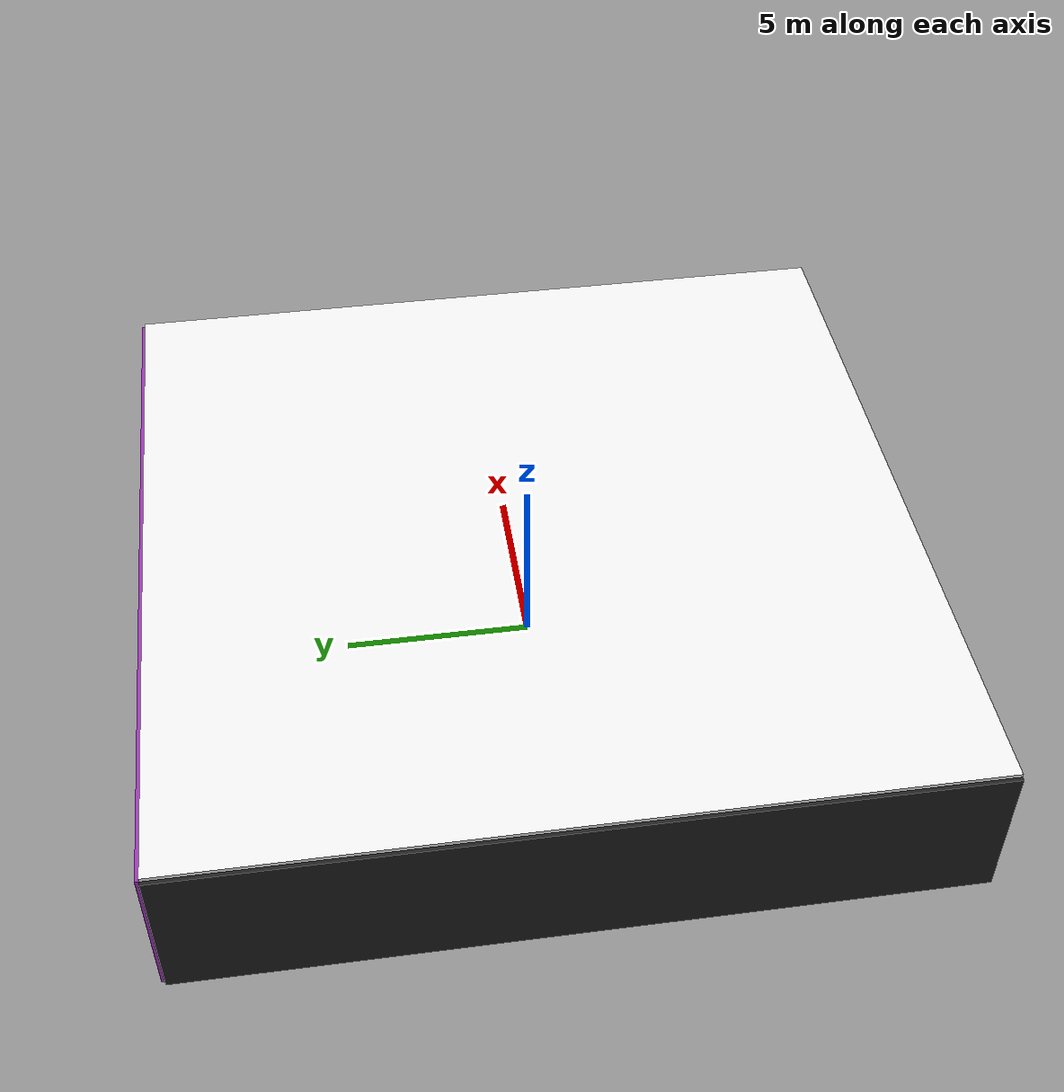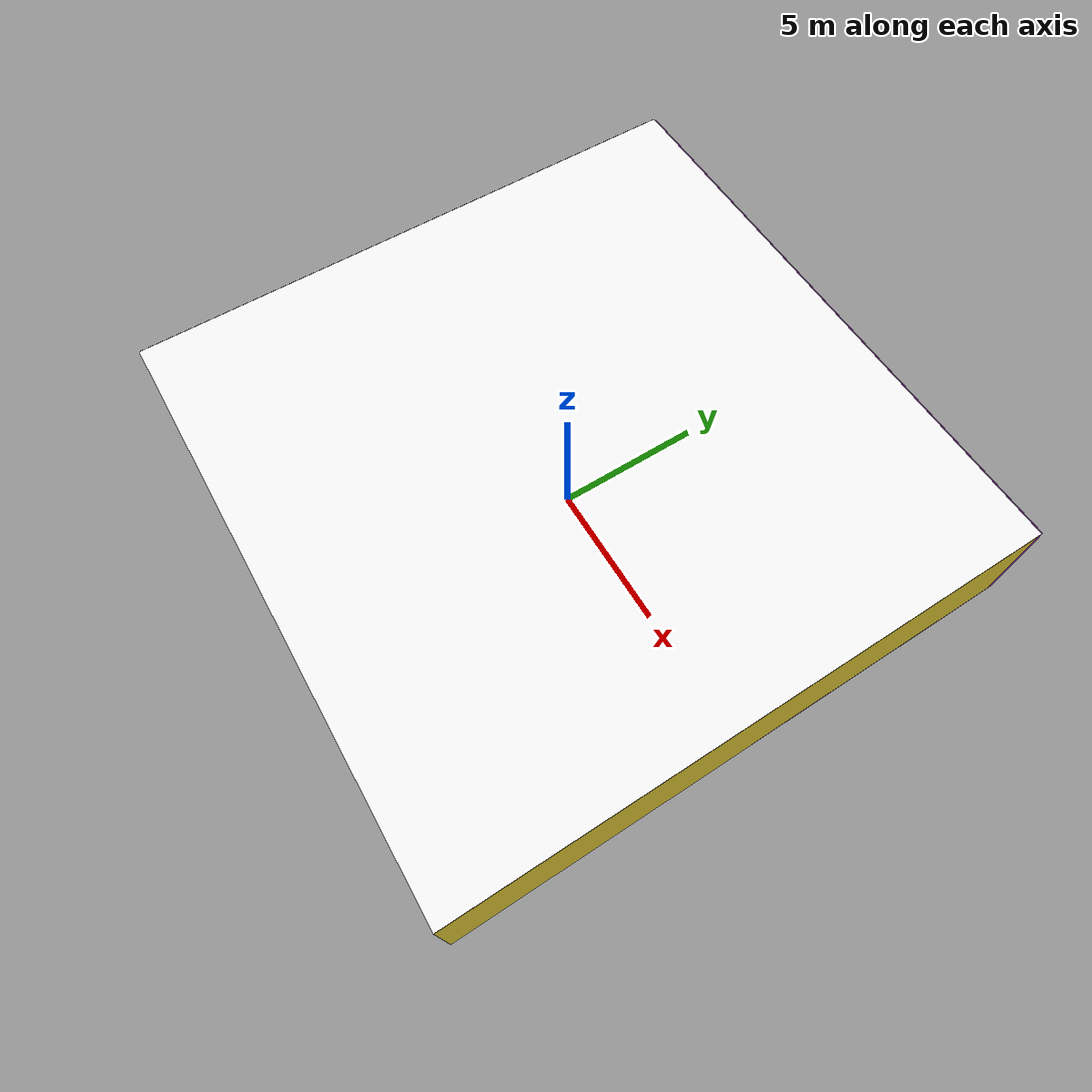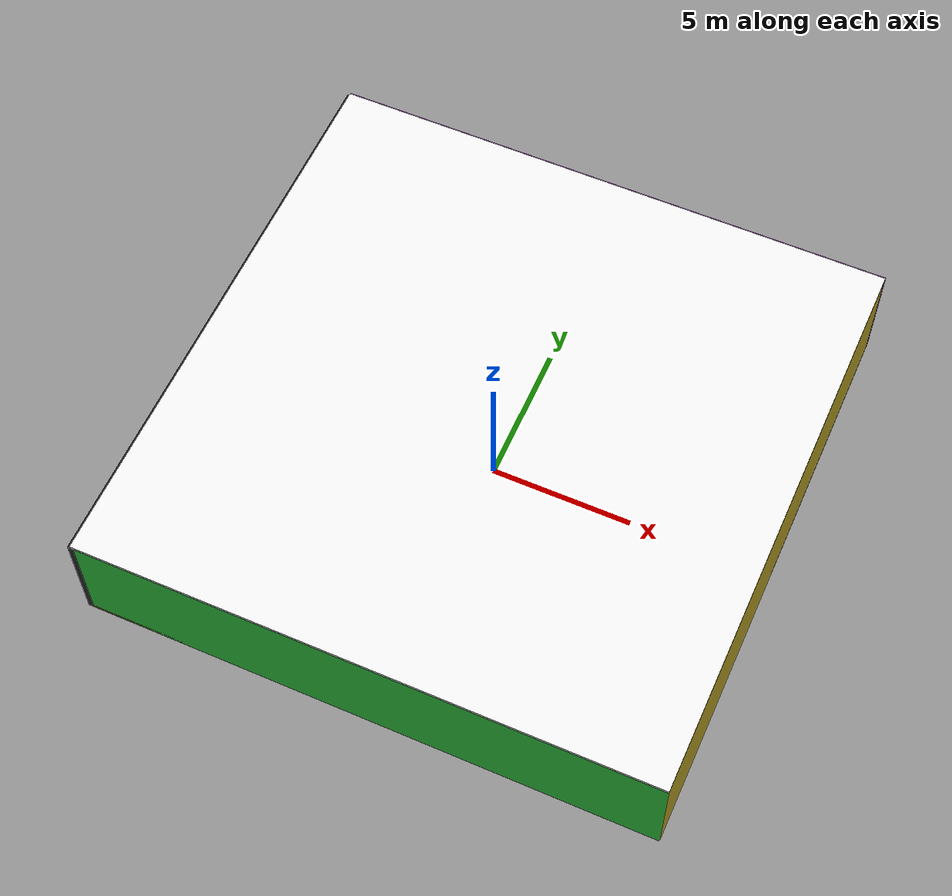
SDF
<sdf version="1.4">
 <world name="default">
  <physics type="ode">
   <max_step_size>0.001</max_step_size>
   <real_time_factor>1</real_time_factor>
   <real_time_update_rate>1000</real_time_update_rate>
   <gravity>0 0 -9.8</gravity>
  </physics>
  <scene><ambient>0.4 0.4 0.4 1</ambient><background>0.7 0.7 0.7 1</background><shadows>1</shadows></scene>
  <model name="Surrounding">
   <static>1</static>
   <link name="Ceiling">
    <collision name="Ceiling_Collision"><geometry><box><size>20 20 0.1</size></box></geometry></collision>
    <visual name="Ceiling_Visual">
     <geometry><box><size>20 20 0.1</size></box></geometry>
     <material>
      <script><uri>file://media/materials/scripts/gazebo.material</uri><name>Gazebo/WhiteGlow</name></script>
     </material>
    </visual>
    <pose>0 0 4.05 0 0 0</pose>
   </link>
   <link name="Wall_South">
    <collision name="Wall_South_Collision">
     <geometry><box><size>20 0 4</size></box></geometry>
     <pose>0 0 2 0 -0 0</pose>
    </collision>
    <visual name="Wall_South_Visual">
     <pose>0 0 2 0 -0 0</pose>
     <geometry><box><size>20 0 4</size></box></geometry>
     <material>
      <script><uri>file://media/materials/scripts/gazebo.material</uri><name>Gazebo/Green</name></script>
     </material>
    </visual>
    <velocity_decay><linear>0</linear><angular>0</angular></velocity_decay>
    <pose>0 -10 0 0 -0 0</pose>
   </link>
   <link name="Wall_East">
    <collision name="Wall_21_Collision">
     <geometry><box><size>20 0 4</size></box></geometry>
     <pose>0 0 2 0 -0 0</pose>
    </collision>
    <visual name="Wall_21_Visual">
     <pose>0 0 2 0 -0 0</pose>
     <geometry><box><size>20 0 4</size></box></geometry>
     <material>
      <script><uri>file://media/materials/scripts/gazebo.material</uri><name>Gazebo/ZincYellow</name></script>
     </material>
    </visual>
    <velocity_decay><linear>0</linear><angular>0</angular></velocity_decay>
    <pose>10 0 0 0 -0 1.5708</pose>
   </link>
   <link name="Wall_North">
    <collision name="Wall_22_Collision">
     <geometry><box><size>20 0.2 4</size></box></geometry>
     <pose>0 0 2 0 -0 0</pose>
    </collision>
    <visual name="Wall_22_Visual">
     <pose>0 0 2 0 -0 0</pose>
     <geometry><box><size>20 0.2 4</size></box></geometry>
     <material>
      <script><uri>file://media/materials/scripts/gazebo.material</uri><name>Gazebo/PurpleGlow</name></script>
     </material>
    </visual>
    <velocity_decay><linear>0</linear><angular>0</angular></velocity_decay>
    <pose>0 10 0 0 -0 0</pose>
   </link>
   <link name="Wall_West">
    <collision name="Wall_23_Collision">
     <geometry><box><size>20 0.2 4</size></box></geometry>
     <pose>0 0 2 0 -0 0</pose>
    </collision>
    <visual name="Wall_23_Visual">
     <pose>0 0 2 0 -0 0</pose>
     <geometry><box><size>20 0.2 4</size></box></geometry>
     <material>
      <script><uri>file://media/materials/scripts/gazebo.material</uri><name>Gazebo/Black</name></script>
     </material>
    </visual>
    <velocity_decay><linear>0</linear><angular>0</angular></velocity_decay>
    <pose>-10 0 0 0 0 -1.5708</pose>
   </link>
   <link name="Ground_link">
    <collision name="collision">
     <pose>0 0 .05 0 -0 0</pose>
     <geometry><box><size>20 20 0.1</size></box></geometry>
    </collision>
    <visual name="visual">
     <pose>0 0 .05 0 -0 0</pose>
     <geometry><box><size>20 20 0.1</size></box></geometry>
     <material>
      <script><uri>file://media/materials/scripts/gazebo.material</uri><name>Gazebo/WoodPallet</name></script>
     </material>
    </visual>
   </link>
   <static>1</static>
  </model>
  <spherical_coordinates>
   <surface_model>EARTH_WGS84</surface_model>
   <latitude_deg>0</latitude_deg>
   <longitude_deg>0</longitude_deg>
   <elevation>0</elevation>
   <heading_deg>0</heading_deg>
  </spherical_coordinates>
  <light name="lightball_0" type="diffuse">
   <diffuse>0.8 0.8 0.8 1</diffuse>
   <specular>0.2 0.2 0.2 1</specular>
   <attenuation>
    <range>100</range>
    <constant>0.7</constant>
    <linear>0.01</linear>
    <quadratic>0.001</quadratic>
   </attenuation>
   <direction>-0.5 0.1 -0.9</direction>
   <pose>3.85256175329 -6.82026349954 1.09618343446 0 0 0</pose>
  </light>
  <light name="lightball_1" type="diffuse">
   <diffuse>0.8 0.8 0.8 1</diffuse>
   <specular>0.2 0.2 0.2 1</specular>
   <attenuation>
    <range>100</range>
    <constant>0.7</constant>
    <linear>0.01</linear>
    <quadratic>0.001</quadratic>
   </attenuation>
   <direction>-0.5 0.1 -0.9</direction>
   <pose>2.81139578855 -1.03750825473 3.04011312178 0 0 0</pose>
  </light>
  <light name="lightball_2" type="diffuse">
   <diffuse>0.8 0.8 0.8 1</diffuse>
   <specular>0.2 0.2 0.2 1</specular>
   <attenuation>
    <range>100</range>
    <constant>0.7</constant>
    <linear>0.01</linear>
    <quadratic>0.001</quadratic>
   </attenuation>
   <direction>-0.5 0.1 -0.9</direction>
   <pose>-2.90936763897 -9.49802464839 1.2670732986 0 0 0</pose>
  </light>
  <include><uri>model://table</uri><pose>-6.97523769542 -3.36462052019 0 0 0 2.67048405161</pose></include>
  <include>
   <uri>model://construction_cone</uri>
   <pose>-6.39877850569 7.5637542001 0 0 0 0.97510863349</pose>
  </include>
  <include><uri>model://cabinet</uri><pose>-5.64489030283 -4.42635251055 0 0 0 0.99935338841</pose></include>
  <include>
   <uri>model://construction_cone</uri>
   <pose>-1.82933396445 4.85917815242 0 0 0 1.54573141161</pose>
  </include>
  <include><uri>model://table</uri><pose>-1.04928335072 7.02941748999 0 0 0 1.44281049899</pose></include>
  <include><uri>model://cabinet</uri><pose>1.39107400372 0.670574436506 0 0 0 2.71894261276</pose></include>
  <include>
   <uri>model://construction_cone</uri>
   <pose>2.0342930158 5.22989546549 0 0 0 1.7669706839</pose>
  </include>
  <include><uri>model://table</uri><pose>4.82326015817 -7.28939187407 0 0 0 0.614532107474</pose></include>
  <include>
   <uri>model://textured_shapes</uri>
   <pose>5.02189041691 -5.16355144683 0 0 0 0.139166326805</pose>
  </include>
  <include>
   <uri>model://robocup_3Dsim_goal</uri>
   <pose>4.93981855986 4.418340802 0 0 0 1.8389404623</pose>
  </include>
  <include><uri>model://table</uri><pose>6.58222789666 -5.66580947367 0 0 0 0.0252783385167</pose></include>
 </world>
</sdf>

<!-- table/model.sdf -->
<sdf version="1.5">
  <model name="table">
    <static>true</static>
    <link name="link">
      <collision name="surface">
        <pose>0 0 1.0 0 0 0</pose>
        <geometry>
          <box>
            <size>1.5 0.8 0.03</size>
          </box>
        </geometry>
        <surface>
          <friction>
            <ode>
              <mu>0.6</mu>
              <mu2>0.6</mu2>
            </ode>
          </friction>
        </surface>
      </collision>
      <visual name="visual1">
        <pose>0 0 1.0 0 0 0</pose>
        <geometry>
          <box>
            <size>1.5 0.8 0.03</size>
          </box>
        </geometry>
        <material>
          <script>
            <uri>model://media/materials/scripts/gazebo.material</uri>
            <name>Gazebo/Wood</name>
          </script>
        </material>
      </visual>
      <collision name="front_left_leg">
        <pose>0.68 0.38 0.5 0 0 0</pose>
        <geometry>
          <cylinder>
            <radius>0.02</radius>
            <length>1.0</length>
          </cylinder>
        </geometry>
      </collision>
      <visual name="front_left_leg">
        <pose>0.68 0.38 0.5 0 0 0</pose>
        <geometry>
          <cylinder>
            <radius>0.02</radius>
            <length>1.0</length>
          </cylinder>
        </geometry>
        <material>
          <script>
            <uri>model://media/materials/scripts/gazebo.material</uri>
            <name>Gazebo/Grey</name>
          </script>
        </material>
      </visual>
      <collision name="front_right_leg">
        <pose>0.68 -0.38 0.5 0 0 0</pose>
        <geometry>
          <cylinder>
            <radius>0.02</radius>
            <length>1.0</length>
          </cylinder>
        </geometry>
      </collision>
      <visual name="front_right_leg">
        <pose>0.68 -0.38 0.5 0 0 0</pose>
        <geometry>
          <cylinder>
            <radius>0.02</radius>
            <length>1.0</length>
          </cylinder>
        </geometry>
        <material>
          <script>
            <uri>model://media/materials/scripts/gazebo.material</uri>
            <name>Gazebo/Grey</name>
          </script>
        </material>
      </visual>
      <collision name="back_right_leg">
        <pose>-0.68 -0.38 0.5 0 0 0</pose>
        <geometry>
          <cylinder>
            <radius>0.02</radius>
            <length>1.0</length>
          </cylinder>
        </geometry>
      </collision>
      <visual name="back_right_leg">
        <pose>-0.68 -0.38 0.5 0 0 0</pose>
        <geometry>
          <cylinder>
            <radius>0.02</radius>
            <length>1.0</length>
          </cylinder>
        </geometry>
        <material>
          <script>
            <uri>model://media/materials/scripts/gazebo.material</uri>
            <name>Gazebo/Grey</name>
          </script>
        </material>
      </visual>
      <collision name="back_left_leg">
        <pose>-0.68 0.38 0.5 0 0 0</pose>
        <geometry>
          <cylinder>
            <radius>0.02</radius>
            <length>1.0</length>
          </cylinder>
        </geometry>
      </collision>
      <visual name="back_left_leg">
        <pose>-0.68 0.38 0.5 0 0 0</pose>
        <geometry>
          <cylinder>
            <radius>0.02</radius>
            <length>1.0</length>
          </cylinder>
        </geometry>
        <material>
          <script>
            <uri>model://media/materials/scripts/gazebo.material</uri>
            <name>Gazebo/Grey</name>
          </script>
        </material>
      </visual>
    </link>
  </model>
</sdf>

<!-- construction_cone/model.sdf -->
<sdf version="1.5">
  <model name="Construction Cone">
    <link name="link">
      <collision name="collision">
        <geometry>
          <mesh>
            <scale>10 10 10</scale>
            <uri>file://isr-testbed/construction_cone/meshes/construction_cone.dae</uri>
          </mesh>
        </geometry>
      </collision>
      <visual name="visual">
        <geometry>
          <mesh>
            <scale>10 10 10</scale>
            <uri>file://isr-testbed/construction_cone/meshes/construction_cone.dae</uri>
          </mesh>
        </geometry>
      </visual>
    </link>
  </model>
</sdf>

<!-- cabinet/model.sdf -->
<sdf version="1.5">
  <model name="cabinet">
    <static>true</static>
    <link name="cabinet_bottom_plate">
      <inertial>
        <pose>0 0 -1 0 0 0</pose>
        <inertia>
          <ixx>2.050000</ixx>
          <ixy>0</ixy>
          <ixz>0</ixz>
          <iyy>2.050000</iyy>
          <iyz>0</iyz>
          <izz>2.050000</izz>
        </inertia>
        <mass>25.000000</mass>
      </inertial>
      <collision name="cabinet_bottom_plate_geom">
        <pose>0 0 0.010000 0 0 0</pose>
        <geometry>
          <box>
            <size>0.450000 0.450000 0.020000</size>
          </box>
        </geometry>
      </collision>
      <visual name="cabinet_bottom_plate_geom_visual">
        <pose>0 0 0.010000 0 0 0</pose>
        <geometry>
          <box>
            <size>0.450000 0.450000 0.020000</size>
          </box>
        </geometry>
        <material>
          <script>
            <uri>model://media/materials/scripts/gazebo.material</uri>
            <name>Gazebo/Wood</name>
          </script>
        </material>
      </visual>
      <collision name="cabinet_bottom_plate_geom_cabinet_back_plate">
        <pose>0.235000 0 0.510000 0 0 0</pose>
        <geometry>
          <box>
            <size>0.020000 0.450000 1.020000</size>
          </box>
        </geometry>
      </collision>
      <visual name="cabinet_bottom_plate_geom_cabinet_back_plate_visual">
        <pose>0.235000 0 0.510000 0 0 0</pose>
        <geometry>
          <box>
            <size>0.020000 0.450000 1.020000</size>
          </box>
        </geometry>
        <material>
          <script>
            <uri>model://media/materials/scripts/gazebo.material</uri>
            <name>Gazebo/Wood</name>
          </script>
        </material>
      </visual>
      <collision name="cabinet_bottom_plate_geom_cabinet_left_plate">
        <pose>0 0.235000 0.510000 0 0 0</pose>
        <geometry>
          <box>
            <size>0.450000 0.020000 1.020000</size>
          </box>
        </geometry>
      </collision>
      <visual name="cabinet_bottom_plate_geom_cabinet_left_plate_visual">
        <pose>0 0.235000 0.510000 0 0 0</pose>
        <geometry>
          <box>
            <size>0.450000 0.020000 1.020000</size>
          </box>
        </geometry>
        <material>
          <script>
            <uri>model://media/materials/scripts/gazebo.material</uri>
            <name>Gazebo/Wood</name>
          </script>
        </material>
      </visual>
      <collision name="cabinet_bottom_plate_geom_cabinet_middle_plate">
        <pose>0 0 0.510000 0 0 0</pose>
        <geometry>
          <box>
            <size>0.450000 0.450000 0.020000</size>
          </box>
        </geometry>
      </collision>
      <visual name="cabinet_bottom_plate_geom_cabinet_middle_plate_visual">
        <pose>0 0 0.510000 0 0 0</pose>
        <geometry>
          <box>
            <size>0.450000 0.450000 0.020000</size>
          </box>
        </geometry>
        <material>
          <script>
            <uri>model://media/materials/scripts/gazebo.material</uri>
            <name>Gazebo/Wood</name>
          </script>
        </material>
      </visual>
      <collision name="cabinet_bottom_plate_geom_cabinet_right_plate">
        <pose>0 -0.235000 0.510000 0 0 0</pose>
        <geometry>
          <box>
            <size>0.450000 0.020000 1.020000</size>
          </box>
        </geometry>
      </collision>
      <visual name="cabinet_bottom_plate_geom_cabinet_right_plate_visual">
        <pose>0 -0.235000 0.510000 0 0 0</pose>
        <geometry>
          <box>
            <size>0.450000 0.020000 1.020000</size>
          </box>
        </geometry>
        <material>
          <script>
            <uri>model://media/materials/scripts/gazebo.material</uri>
            <name>Gazebo/Wood</name>
          </script>
        </material>
      </visual>
      <collision name="cabinet_bottom_plate_geom_cabinet_top_plate">
        <pose>0 0 1.010000 0 0 0</pose>
        <geometry>
          <box>
            <size>0.450000 0.450000 0.020000</size>
          </box>
        </geometry>
      </collision>
      <visual name="cabinet_bottom_plate_geom_cabinet_top_plate_visual">
        <pose>0 0 1.010000 0 0 0</pose>
        <geometry>
          <box>
            <size>0.450000 0.450000 0.020000</size>
          </box>
        </geometry>
        <material>
          <script>
            <uri>model://media/materials/scripts/gazebo.material</uri>
            <name>Gazebo/Wood</name>
          </script>
        </material>
      </visual>
    </link>
  </model>
</sdf>

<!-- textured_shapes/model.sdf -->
<sdf version="1.6">
  <model name="textured_shapes">
    <pose>0 0 0.5 0 0 0</pose>
    <link name="box">
      <pose>0 -1.5 0 0 0 0</pose>
      <collision name="collision">
        <geometry>
          <box>
            <size>1 1 1</size>
          </box>
        </geometry>
      </collision>
      <visual name="visual">
        <geometry>
          <box>
            <size>1 1 1</size>
          </box>
        </geometry>
        <material>
          <script>
            <uri>model://../model_source/models/textured_shapes/materials/scripts</uri>
            <uri>model://../model_source/models/textured_shapes/materials/textures</uri>
            <name>TexturedShape/Squares</name>
          </script>
        </material>
      </visual>
    </link>
    <link name="sphere">
      <collision name="collision">
        <geometry>
          <sphere>
            <radius>0.5</radius>
          </sphere>
        </geometry>
      </collision>
      <visual name="visual">
        <geometry>
          <sphere>
            <radius>0.5</radius>
          </sphere>
        </geometry>
        <material>
          <script>
            <uri>model://../model_source/models/textured_shapes/materials/scripts</uri>
            <uri>model://../model_source/models/textured_shapes/materials/textures</uri>
            <name>TexturedShape/Squares</name>
          </script>
        </material>
      </visual>
    </link>
    <link name="cylinder">
      <pose>0 1.5 0 0 0 0</pose>
      <collision name="collision">
        <geometry>
          <cylinder>
            <radius>0.5</radius>
            <length>1</length>
          </cylinder>
        </geometry>
      </collision>
      <visual name="visual">
        <geometry>
          <cylinder>
            <radius>0.5</radius>
            <length>1</length>
          </cylinder>
        </geometry>
        <material>
          <script>
            <uri>model://../model_source/models/textured_shapes/materials/scripts</uri>
            <uri>model://../model_source/models/textured_shapes/materials/textures</uri>
            <name>TexturedShape/Squares</name>
          </script>
        </material>
      </visual>
    </link>
  </model>
</sdf>

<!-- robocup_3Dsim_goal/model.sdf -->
<sdf version="1.5">
  <model name="robocup_3d_goal">
    <static>true</static>
    <link name="left_post">
      <pose>0 1.05 0.45 0 0 0</pose>
      <collision name="collision">
        <geometry>
          <cylinder>
            <radius>0.05</radius>
            <length>0.9</length>
          </cylinder>
        </geometry>
      </collision>
      <visual name="visual">
        <geometry>
          <cylinder>
            <radius>0.05</radius>
            <length>0.9</length>
          </cylinder>
        </geometry>
        <material>
          <script>
            <uri>file://media/materials/scripts/gazebo.material</uri>
            <name>Gazebo/ZincYellow</name>
          </script>
        </material>
      </visual>
    </link>
    <link name="left_support_horiz_lower">
      <pose>0.30 1.05 0.01 0 0 0</pose>
      <collision name="collision">
        <geometry>
          <box>
            <size>0.50 0.02 0.02</size>
          </box>
        </geometry>
      </collision>
      <visual name="visual">
        <geometry>
          <box>
            <size>0.50 0.02 0.02</size>
          </box>
        </geometry>
        <material>
          <script>
            <uri>file://media/materials/scripts/gazebo.material</uri>
            <name>Gazebo/White</name>
          </script>
        </material>
      </visual>
    </link>
    <link name="left_support_horiz_upper">
      <pose>0.30 1.05 0.79 0 0 0</pose>
      <collision name="collision">
        <geometry>
          <box>
            <size>0.50 0.02 0.02</size>
          </box>
        </geometry>
      </collision>
      <visual name="visual">
        <geometry>
          <box>
            <size>0.50 0.02 0.02</size>
          </box>
        </geometry>
        <material>
          <script>
            <uri>file://media/materials/scripts/gazebo.material</uri>
            <name>Gazebo/White</name>
          </script>
        </material>
      </visual>
    </link>
    <link name="left_support_vertical">
      <pose>0.56 1.05 0.4 0 1.5708 0</pose>
      <collision name="collision">
        <geometry>
          <box>
            <size>0.80 0.02 0.02</size>
          </box>
        </geometry>
      </collision>
      <visual name="visual">
        <geometry>
          <box>
            <size>0.80 0.02 0.02</size>
          </box>
        </geometry>
        <material>
          <script>
            <uri>file://media/materials/scripts/gazebo.material</uri>
            <name>Gazebo/White</name>
          </script>
        </material>
      </visual>
    </link>
    <link name="right_support_horiz_lower">
      <pose>0.30 -1.05 0.01 0 0 0</pose>
      <collision name="collision">
        <geometry>
          <box>
            <size>0.50 0.02 0.02</size>
          </box>
        </geometry>
      </collision>
      <visual name="visual">
        <geometry>
          <box>
            <size>0.50 0.02 0.02</size>
          </box>
        </geometry>
        <material>
          <script>
            <uri>file://media/materials/scripts/gazebo.material</uri>
            <name>Gazebo/White</name>
          </script>
        </material>
      </visual>
    </link>
    <link name="right_support_horiz_upper">
      <pose>0.30 -1.05 0.79 0 0 0</pose>
      <collision name="collision">
        <geometry>
          <box>
            <size>0.50 0.02 0.02</size>
          </box>
        </geometry>
      </collision>
      <visual name="visual">
        <geometry>
          <box>
            <size>0.50 0.02 0.02</size>
          </box>
        </geometry>
        <material>
          <script>
            <uri>file://media/materials/scripts/gazebo.material</uri>
            <name>Gazebo/White</name>
          </script>
        </material>
      </visual>
    </link>
    <link name="right_support_vertical">
      <pose>0.56 -1.05 0.4 0 1.5708 0</pose>
      <collision name="collision">
        <geometry>
          <box>
            <size>0.80 0.02 0.02</size>
          </box>
        </geometry>
      </collision>
      <visual name="visual">
        <geometry>
          <box>
            <size>0.80 0.02 0.02</size>
          </box>
        </geometry>
        <material>
          <script>
            <uri>file://media/materials/scripts/gazebo.material</uri>
            <name>Gazebo/White</name>
          </script>
        </material>
      </visual>
    </link>
    <link name="center_support_horiz_lower">
      <pose>0.56 0 0.01 0 1.5708 0</pose>
      <collision name="collision">
        <geometry>
          <box>
            <size>0.02 2.08 0.02</size>
          </box>
        </geometry>
      </collision>
      <visual name="visual">
        <geometry>
          <box>
            <size>0.02 2.08 0.02</size>
          </box>
        </geometry>
        <material>
          <script>
            <uri>file://media/materials/scripts/gazebo.material</uri>
            <name>Gazebo/White</name>
          </script>
        </material>
      </visual>
    </link>
    <link name="center_support_horiz_upper">
      <pose>0.56 0 0.79 0 1.5708 0</pose>
      <collision name="collision">
        <geometry>
          <box>
            <size>0.02 2.08 0.02</size>
          </box>
        </geometry>
      </collision>
      <visual name="visual">
        <geometry>
          <box>
            <size>0.02 2.08 0.02</size>
          </box>
        </geometry>
        <material>
          <script>
            <uri>file://media/materials/scripts/gazebo.material</uri>
            <name>Gazebo/White</name>
          </script>
        </material>
      </visual>
    </link>
    <link name="right_post">
      <pose>0 -1.05 0.45 0 0 0</pose>
      <collision name="collision">
        <geometry>
          <cylinder>
            <radius>0.05</radius>
            <length>0.9</length>
          </cylinder>
        </geometry>
      </collision>
      <visual name="visual">
        <geometry>
          <cylinder>
            <radius>0.05</radius>
            <length>0.9</length>
          </cylinder>
        </geometry>
        <material>
          <script>
            <uri>file://media/materials/scripts/gazebo.material</uri>
            <name>Gazebo/ZincYellow</name>
          </script>
        </material>
      </visual>
    </link>
    <link name="crossbar">
      <pose>0 0 0.85 1.57 1.57 0</pose>
      <collision name="collision">
        <geometry>
          <cylinder>
            <radius>0.05</radius>
            <length>2.0</length>
          </cylinder>
        </geometry>
      </collision>
      <visual name="visual">
        <geometry>
          <cylinder>
            <radius>0.05</radius>
            <length>2.0</length>
          </cylinder>
        </geometry>
        <material>
          <script>
            <uri>file://media/materials/scripts/gazebo.material</uri>
            <name>Gazebo/ZincYellow</name>
          </script>
        </material>
      </visual>
    </link>
    <link name="center_net">
      <pose>0.56 0 0.40 0 0 0</pose>
      <collision name="collision">
        <geometry>
          <box>
            <size>0.01 2.1 0.80</size>
          </box>
        </geometry>
      </collision>
      <visual name="visual">
        <geometry>
          <box>
            <size>0.01 2.1 0.80</size>
          </box>
        </geometry>
        <material>
          <script>
            <uri>model://../model_source/models/robocup09_spl_field/materials/scripts/</uri>
            <uri>model://../model_source/models/robocup09_spl_field/materials/textures/</uri>
            <name>RoboCup/Net</name>
          </script>
        </material>
      </visual>
    </link>
    <link name="left_net">
      <pose>0.30 1.05 0.40 0 0 0</pose>
      <collision name="collision">
        <geometry>
          <box>
            <size>0.50 0.01 0.76</size>
          </box>
        </geometry>
      </collision>
      <visual name="visual">
        <geometry>
          <box>
            <size>0.50 0.01 0.76</size>
          </box>
        </geometry>
        <material>
          <script>
            <uri>model://../model_source/models/robocup09_spl_field/materials/scripts/</uri>
            <uri>model://../model_source/models/robocup09_spl_field/materials/textures/</uri>
            <name>RoboCup/Net</name>
          </script>
        </material>
      </visual>
    </link>
    <link name="right_net">
      <pose>0.30 -1.05 0.40 0 0 0</pose>
      <collision name="collision">
        <geometry>
          <box>
            <size>0.50 0.01 0.76</size>
          </box>
        </geometry>
      </collision>
      <visual name="visual">
        <geometry>
          <box>
            <size>0.50 0.01 0.76</size>
          </box>
        </geometry>
        <material>
          <script>
            <uri>model://../model_source/models/robocup09_spl_field/materials/scripts/</uri>
            <uri>model://../model_source/models/robocup09_spl_field/materials/textures/</uri>
            <name>RoboCup/Net</name>
          </script>
        </material>
      </visual>
    </link>
  </model>
</sdf>
